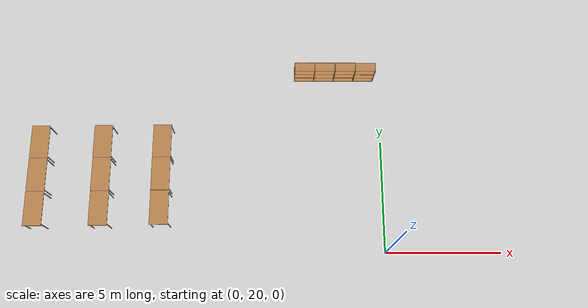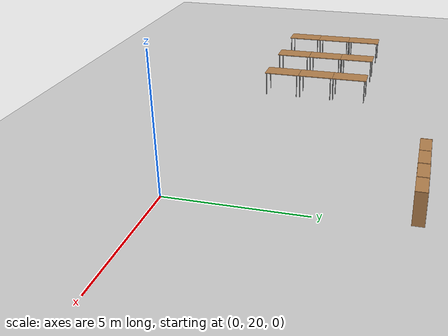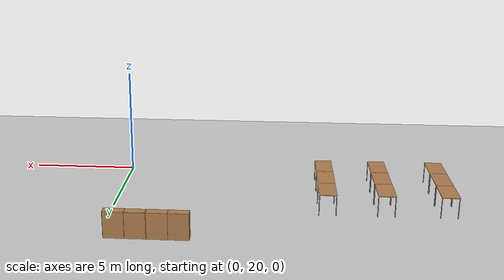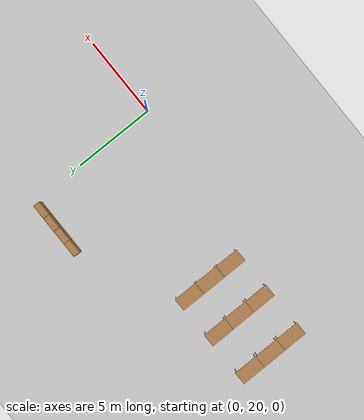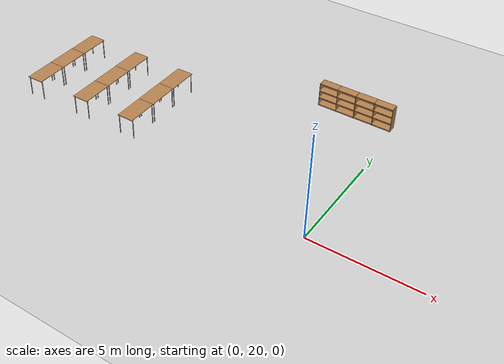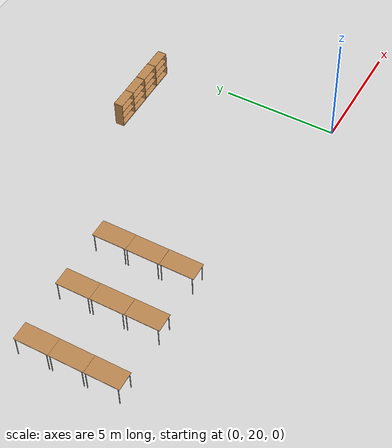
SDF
<sdf version="1.7">
 <world name="default">
  <include><uri>model://ground_plane</uri></include>
  <model name="table_clone_0_clone_0">
   <static>1</static>
   <link name="link">
    <collision name="surface">
     <pose>0 0 1 0 -0 0</pose>
     <geometry><box><size>1.5 0.8 0.03</size></box></geometry>
     <surface><friction><ode><mu>0.6</mu><mu2>0.6</mu2></ode></friction></surface>
    </collision>
    <visual name="visual1">
     <pose>0 0 1 0 -0 0</pose>
     <geometry><box><size>1.5 0.8 0.03</size></box></geometry>
     <material>
      <script><uri>file://media/materials/scripts/gazebo.material</uri><name>Gazebo/Wood</name></script>
     </material>
    </visual>
    <collision name="front_left_leg">
     <pose>0.68 0.38 0.5 0 -0 0</pose>
     <geometry><cylinder><radius>0.02</radius><length>1</length></cylinder></geometry>
    </collision>
    <visual name="front_left_leg">
     <pose>0.68 0.38 0.5 0 -0 0</pose>
     <geometry><cylinder><radius>0.02</radius><length>1</length></cylinder></geometry>
     <material>
      <script><uri>file://media/materials/scripts/gazebo.material</uri><name>Gazebo/Grey</name></script>
     </material>
    </visual>
    <collision name="front_right_leg">
     <pose>0.68 -0.38 0.5 0 -0 0</pose>
     <geometry><cylinder><radius>0.02</radius><length>1</length></cylinder></geometry>
    </collision>
    <visual name="front_right_leg">
     <pose>0.68 -0.38 0.5 0 -0 0</pose>
     <geometry><cylinder><radius>0.02</radius><length>1</length></cylinder></geometry>
     <material>
      <script><uri>file://media/materials/scripts/gazebo.material</uri><name>Gazebo/Grey</name></script>
     </material>
    </visual>
    <collision name="back_right_leg">
     <pose>-0.68 -0.38 0.5 0 -0 0</pose>
     <geometry><cylinder><radius>0.02</radius><length>1</length></cylinder></geometry>
    </collision>
    <visual name="back_right_leg">
     <pose>-0.68 -0.38 0.5 0 -0 0</pose>
     <geometry><cylinder><radius>0.02</radius><length>1</length></cylinder></geometry>
     <material>
      <script><uri>file://media/materials/scripts/gazebo.material</uri><name>Gazebo/Grey</name></script>
     </material>
    </visual>
    <collision name="back_left_leg">
     <pose>-0.68 0.38 0.5 0 -0 0</pose>
     <geometry><cylinder><radius>0.02</radius><length>1</length></cylinder></geometry>
    </collision>
    <visual name="back_left_leg">
     <pose>-0.68 0.38 0.5 0 -0 0</pose>
     <geometry><cylinder><radius>0.02</radius><length>1</length></cylinder></geometry>
     <material>
      <script><uri>file://media/materials/scripts/gazebo.material</uri><name>Gazebo/Grey</name></script>
     </material>
    </visual>
   </link>
   <pose>-15.0782 21.6879 0 0 -0 1.57868</pose>
  </model>
  <model name="table_clone_0_clone_0_clone">
   <static>1</static>
   <link name="link">
    <collision name="surface">
     <pose>0 0 1 0 -0 0</pose>
     <geometry><box><size>1.5 0.8 0.03</size></box></geometry>
     <surface><friction><ode><mu>0.6</mu><mu2>0.6</mu2></ode></friction></surface>
    </collision>
    <visual name="visual1">
     <pose>0 0 1 0 -0 0</pose>
     <geometry><box><size>1.5 0.8 0.03</size></box></geometry>
     <material>
      <script><uri>file://media/materials/scripts/gazebo.material</uri><name>Gazebo/Wood</name></script>
     </material>
    </visual>
    <collision name="front_left_leg">
     <pose>0.68 0.38 0.5 0 -0 0</pose>
     <geometry><cylinder><radius>0.02</radius><length>1</length></cylinder></geometry>
    </collision>
    <visual name="front_left_leg">
     <pose>0.68 0.38 0.5 0 -0 0</pose>
     <geometry><cylinder><radius>0.02</radius><length>1</length></cylinder></geometry>
     <material>
      <script><uri>file://media/materials/scripts/gazebo.material</uri><name>Gazebo/Grey</name></script>
     </material>
    </visual>
    <collision name="front_right_leg">
     <pose>0.68 -0.38 0.5 0 -0 0</pose>
     <geometry><cylinder><radius>0.02</radius><length>1</length></cylinder></geometry>
    </collision>
    <visual name="front_right_leg">
     <pose>0.68 -0.38 0.5 0 -0 0</pose>
     <geometry><cylinder><radius>0.02</radius><length>1</length></cylinder></geometry>
     <material>
      <script><uri>file://media/materials/scripts/gazebo.material</uri><name>Gazebo/Grey</name></script>
     </material>
    </visual>
    <collision name="back_right_leg">
     <pose>-0.68 -0.38 0.5 0 -0 0</pose>
     <geometry><cylinder><radius>0.02</radius><length>1</length></cylinder></geometry>
    </collision>
    <visual name="back_right_leg">
     <pose>-0.68 -0.38 0.5 0 -0 0</pose>
     <geometry><cylinder><radius>0.02</radius><length>1</length></cylinder></geometry>
     <material>
      <script><uri>file://media/materials/scripts/gazebo.material</uri><name>Gazebo/Grey</name></script>
     </material>
    </visual>
    <collision name="back_left_leg">
     <pose>-0.68 0.38 0.5 0 -0 0</pose>
     <geometry><cylinder><radius>0.02</radius><length>1</length></cylinder></geometry>
    </collision>
    <visual name="back_left_leg">
     <pose>-0.68 0.38 0.5 0 -0 0</pose>
     <geometry><cylinder><radius>0.02</radius><length>1</length></cylinder></geometry>
     <material>
      <script><uri>file://media/materials/scripts/gazebo.material</uri><name>Gazebo/Grey</name></script>
     </material>
    </visual>
   </link>
   <pose>-15.0927 23.1899 0 0 -0 1.57868</pose>
  </model>
  <model name="table_clone_0_clone_0_clone_0">
   <static>1</static>
   <link name="link">
    <collision name="surface">
     <pose>0 0 1 0 -0 0</pose>
     <geometry><box><size>1.5 0.8 0.03</size></box></geometry>
     <surface><friction><ode><mu>0.6</mu><mu2>0.6</mu2></ode></friction></surface>
    </collision>
    <visual name="visual1">
     <pose>0 0 1 0 -0 0</pose>
     <geometry><box><size>1.5 0.8 0.03</size></box></geometry>
     <material>
      <script><uri>file://media/materials/scripts/gazebo.material</uri><name>Gazebo/Wood</name></script>
     </material>
    </visual>
    <collision name="front_left_leg">
     <pose>0.68 0.38 0.5 0 -0 0</pose>
     <geometry><cylinder><radius>0.02</radius><length>1</length></cylinder></geometry>
    </collision>
    <visual name="front_left_leg">
     <pose>0.68 0.38 0.5 0 -0 0</pose>
     <geometry><cylinder><radius>0.02</radius><length>1</length></cylinder></geometry>
     <material>
      <script><uri>file://media/materials/scripts/gazebo.material</uri><name>Gazebo/Grey</name></script>
     </material>
    </visual>
    <collision name="front_right_leg">
     <pose>0.68 -0.38 0.5 0 -0 0</pose>
     <geometry><cylinder><radius>0.02</radius><length>1</length></cylinder></geometry>
    </collision>
    <visual name="front_right_leg">
     <pose>0.68 -0.38 0.5 0 -0 0</pose>
     <geometry><cylinder><radius>0.02</radius><length>1</length></cylinder></geometry>
     <material>
      <script><uri>file://media/materials/scripts/gazebo.material</uri><name>Gazebo/Grey</name></script>
     </material>
    </visual>
    <collision name="back_right_leg">
     <pose>-0.68 -0.38 0.5 0 -0 0</pose>
     <geometry><cylinder><radius>0.02</radius><length>1</length></cylinder></geometry>
    </collision>
    <visual name="back_right_leg">
     <pose>-0.68 -0.38 0.5 0 -0 0</pose>
     <geometry><cylinder><radius>0.02</radius><length>1</length></cylinder></geometry>
     <material>
      <script><uri>file://media/materials/scripts/gazebo.material</uri><name>Gazebo/Grey</name></script>
     </material>
    </visual>
    <collision name="back_left_leg">
     <pose>-0.68 0.38 0.5 0 -0 0</pose>
     <geometry><cylinder><radius>0.02</radius><length>1</length></cylinder></geometry>
    </collision>
    <visual name="back_left_leg">
     <pose>-0.68 0.38 0.5 0 -0 0</pose>
     <geometry><cylinder><radius>0.02</radius><length>1</length></cylinder></geometry>
     <material>
      <script><uri>file://media/materials/scripts/gazebo.material</uri><name>Gazebo/Grey</name></script>
     </material>
    </visual>
   </link>
   <pose>-15.1052 24.6869 0 0 -0 1.57868</pose>
  </model>
  <model name="table_clone_0_clone_0_clone_1">
   <static>1</static>
   <link name="link">
    <collision name="surface">
     <pose>0 0 1 0 -0 0</pose>
     <geometry><box><size>1.5 0.8 0.03</size></box></geometry>
     <surface><friction><ode><mu>0.6</mu><mu2>0.6</mu2></ode></friction></surface>
    </collision>
    <visual name="visual1">
     <pose>0 0 1 0 -0 0</pose>
     <geometry><box><size>1.5 0.8 0.03</size></box></geometry>
     <material>
      <script><uri>file://media/materials/scripts/gazebo.material</uri><name>Gazebo/Wood</name></script>
     </material>
    </visual>
    <collision name="front_left_leg">
     <pose>0.68 0.38 0.5 0 -0 0</pose>
     <geometry><cylinder><radius>0.02</radius><length>1</length></cylinder></geometry>
    </collision>
    <visual name="front_left_leg">
     <pose>0.68 0.38 0.5 0 -0 0</pose>
     <geometry><cylinder><radius>0.02</radius><length>1</length></cylinder></geometry>
     <material>
      <script><uri>file://media/materials/scripts/gazebo.material</uri><name>Gazebo/Grey</name></script>
     </material>
    </visual>
    <collision name="front_right_leg">
     <pose>0.68 -0.38 0.5 0 -0 0</pose>
     <geometry><cylinder><radius>0.02</radius><length>1</length></cylinder></geometry>
    </collision>
    <visual name="front_right_leg">
     <pose>0.68 -0.38 0.5 0 -0 0</pose>
     <geometry><cylinder><radius>0.02</radius><length>1</length></cylinder></geometry>
     <material>
      <script><uri>file://media/materials/scripts/gazebo.material</uri><name>Gazebo/Grey</name></script>
     </material>
    </visual>
    <collision name="back_right_leg">
     <pose>-0.68 -0.38 0.5 0 -0 0</pose>
     <geometry><cylinder><radius>0.02</radius><length>1</length></cylinder></geometry>
    </collision>
    <visual name="back_right_leg">
     <pose>-0.68 -0.38 0.5 0 -0 0</pose>
     <geometry><cylinder><radius>0.02</radius><length>1</length></cylinder></geometry>
     <material>
      <script><uri>file://media/materials/scripts/gazebo.material</uri><name>Gazebo/Grey</name></script>
     </material>
    </visual>
    <collision name="back_left_leg">
     <pose>-0.68 0.38 0.5 0 -0 0</pose>
     <geometry><cylinder><radius>0.02</radius><length>1</length></cylinder></geometry>
    </collision>
    <visual name="back_left_leg">
     <pose>-0.68 0.38 0.5 0 -0 0</pose>
     <geometry><cylinder><radius>0.02</radius><length>1</length></cylinder></geometry>
     <material>
      <script><uri>file://media/materials/scripts/gazebo.material</uri><name>Gazebo/Grey</name></script>
     </material>
    </visual>
   </link>
   <pose>-12.3028 21.7171 0 0 -0 1.57868</pose>
  </model>
  <model name="table_clone_0_clone_0_clone_2">
   <static>1</static>
   <link name="link">
    <collision name="surface">
     <pose>0 0 1 0 -0 0</pose>
     <geometry><box><size>1.5 0.8 0.03</size></box></geometry>
     <surface><friction><ode><mu>0.6</mu><mu2>0.6</mu2></ode></friction></surface>
    </collision>
    <visual name="visual1">
     <pose>0 0 1 0 -0 0</pose>
     <geometry><box><size>1.5 0.8 0.03</size></box></geometry>
     <material>
      <script><uri>file://media/materials/scripts/gazebo.material</uri><name>Gazebo/Wood</name></script>
     </material>
    </visual>
    <collision name="front_left_leg">
     <pose>0.68 0.38 0.5 0 -0 0</pose>
     <geometry><cylinder><radius>0.02</radius><length>1</length></cylinder></geometry>
    </collision>
    <visual name="front_left_leg">
     <pose>0.68 0.38 0.5 0 -0 0</pose>
     <geometry><cylinder><radius>0.02</radius><length>1</length></cylinder></geometry>
     <material>
      <script><uri>file://media/materials/scripts/gazebo.material</uri><name>Gazebo/Grey</name></script>
     </material>
    </visual>
    <collision name="front_right_leg">
     <pose>0.68 -0.38 0.5 0 -0 0</pose>
     <geometry><cylinder><radius>0.02</radius><length>1</length></cylinder></geometry>
    </collision>
    <visual name="front_right_leg">
     <pose>0.68 -0.38 0.5 0 -0 0</pose>
     <geometry><cylinder><radius>0.02</radius><length>1</length></cylinder></geometry>
     <material>
      <script><uri>file://media/materials/scripts/gazebo.material</uri><name>Gazebo/Grey</name></script>
     </material>
    </visual>
    <collision name="back_right_leg">
     <pose>-0.68 -0.38 0.5 0 -0 0</pose>
     <geometry><cylinder><radius>0.02</radius><length>1</length></cylinder></geometry>
    </collision>
    <visual name="back_right_leg">
     <pose>-0.68 -0.38 0.5 0 -0 0</pose>
     <geometry><cylinder><radius>0.02</radius><length>1</length></cylinder></geometry>
     <material>
      <script><uri>file://media/materials/scripts/gazebo.material</uri><name>Gazebo/Grey</name></script>
     </material>
    </visual>
    <collision name="back_left_leg">
     <pose>-0.68 0.38 0.5 0 -0 0</pose>
     <geometry><cylinder><radius>0.02</radius><length>1</length></cylinder></geometry>
    </collision>
    <visual name="back_left_leg">
     <pose>-0.68 0.38 0.5 0 -0 0</pose>
     <geometry><cylinder><radius>0.02</radius><length>1</length></cylinder></geometry>
     <material>
      <script><uri>file://media/materials/scripts/gazebo.material</uri><name>Gazebo/Grey</name></script>
     </material>
    </visual>
   </link>
   <pose>-12.3227 23.2209 0 0 -0 1.57868</pose>
  </model>
  <model name="table_clone_0_clone_0_clone_3">
   <static>1</static>
   <link name="link">
    <collision name="surface">
     <pose>0 0 1 0 -0 0</pose>
     <geometry><box><size>1.5 0.8 0.03</size></box></geometry>
     <surface><friction><ode><mu>0.6</mu><mu2>0.6</mu2></ode></friction></surface>
    </collision>
    <visual name="visual1">
     <pose>0 0 1 0 -0 0</pose>
     <geometry><box><size>1.5 0.8 0.03</size></box></geometry>
     <material>
      <script><uri>file://media/materials/scripts/gazebo.material</uri><name>Gazebo/Wood</name></script>
     </material>
    </visual>
    <collision name="front_left_leg">
     <pose>0.68 0.38 0.5 0 -0 0</pose>
     <geometry><cylinder><radius>0.02</radius><length>1</length></cylinder></geometry>
    </collision>
    <visual name="front_left_leg">
     <pose>0.68 0.38 0.5 0 -0 0</pose>
     <geometry><cylinder><radius>0.02</radius><length>1</length></cylinder></geometry>
     <material>
      <script><uri>file://media/materials/scripts/gazebo.material</uri><name>Gazebo/Grey</name></script>
     </material>
    </visual>
    <collision name="front_right_leg">
     <pose>0.68 -0.38 0.5 0 -0 0</pose>
     <geometry><cylinder><radius>0.02</radius><length>1</length></cylinder></geometry>
    </collision>
    <visual name="front_right_leg">
     <pose>0.68 -0.38 0.5 0 -0 0</pose>
     <geometry><cylinder><radius>0.02</radius><length>1</length></cylinder></geometry>
     <material>
      <script><uri>file://media/materials/scripts/gazebo.material</uri><name>Gazebo/Grey</name></script>
     </material>
    </visual>
    <collision name="back_right_leg">
     <pose>-0.68 -0.38 0.5 0 -0 0</pose>
     <geometry><cylinder><radius>0.02</radius><length>1</length></cylinder></geometry>
    </collision>
    <visual name="back_right_leg">
     <pose>-0.68 -0.38 0.5 0 -0 0</pose>
     <geometry><cylinder><radius>0.02</radius><length>1</length></cylinder></geometry>
     <material>
      <script><uri>file://media/materials/scripts/gazebo.material</uri><name>Gazebo/Grey</name></script>
     </material>
    </visual>
    <collision name="back_left_leg">
     <pose>-0.68 0.38 0.5 0 -0 0</pose>
     <geometry><cylinder><radius>0.02</radius><length>1</length></cylinder></geometry>
    </collision>
    <visual name="back_left_leg">
     <pose>-0.68 0.38 0.5 0 -0 0</pose>
     <geometry><cylinder><radius>0.02</radius><length>1</length></cylinder></geometry>
     <material>
      <script><uri>file://media/materials/scripts/gazebo.material</uri><name>Gazebo/Grey</name></script>
     </material>
    </visual>
   </link>
   <pose>-12.3425 24.7177 0 0 -0 1.57868</pose>
  </model>
  <model name="table_clone_0_clone_0_clone_4">
   <static>1</static>
   <link name="link">
    <collision name="surface">
     <pose>0 0 1 0 -0 0</pose>
     <geometry><box><size>1.5 0.8 0.03</size></box></geometry>
     <surface><friction><ode><mu>0.6</mu><mu2>0.6</mu2></ode></friction></surface>
    </collision>
    <visual name="visual1">
     <pose>0 0 1 0 -0 0</pose>
     <geometry><box><size>1.5 0.8 0.03</size></box></geometry>
     <material>
      <script><uri>file://media/materials/scripts/gazebo.material</uri><name>Gazebo/Wood</name></script>
     </material>
    </visual>
    <collision name="front_left_leg">
     <pose>0.68 0.38 0.5 0 -0 0</pose>
     <geometry><cylinder><radius>0.02</radius><length>1</length></cylinder></geometry>
    </collision>
    <visual name="front_left_leg">
     <pose>0.68 0.38 0.5 0 -0 0</pose>
     <geometry><cylinder><radius>0.02</radius><length>1</length></cylinder></geometry>
     <material>
      <script><uri>file://media/materials/scripts/gazebo.material</uri><name>Gazebo/Grey</name></script>
     </material>
    </visual>
    <collision name="front_right_leg">
     <pose>0.68 -0.38 0.5 0 -0 0</pose>
     <geometry><cylinder><radius>0.02</radius><length>1</length></cylinder></geometry>
    </collision>
    <visual name="front_right_leg">
     <pose>0.68 -0.38 0.5 0 -0 0</pose>
     <geometry><cylinder><radius>0.02</radius><length>1</length></cylinder></geometry>
     <material>
      <script><uri>file://media/materials/scripts/gazebo.material</uri><name>Gazebo/Grey</name></script>
     </material>
    </visual>
    <collision name="back_right_leg">
     <pose>-0.68 -0.38 0.5 0 -0 0</pose>
     <geometry><cylinder><radius>0.02</radius><length>1</length></cylinder></geometry>
    </collision>
    <visual name="back_right_leg">
     <pose>-0.68 -0.38 0.5 0 -0 0</pose>
     <geometry><cylinder><radius>0.02</radius><length>1</length></cylinder></geometry>
     <material>
      <script><uri>file://media/materials/scripts/gazebo.material</uri><name>Gazebo/Grey</name></script>
     </material>
    </visual>
    <collision name="back_left_leg">
     <pose>-0.68 0.38 0.5 0 -0 0</pose>
     <geometry><cylinder><radius>0.02</radius><length>1</length></cylinder></geometry>
    </collision>
    <visual name="back_left_leg">
     <pose>-0.68 0.38 0.5 0 -0 0</pose>
     <geometry><cylinder><radius>0.02</radius><length>1</length></cylinder></geometry>
     <material>
      <script><uri>file://media/materials/scripts/gazebo.material</uri><name>Gazebo/Grey</name></script>
     </material>
    </visual>
   </link>
   <pose>-9.72214 21.765 0 0 -0 1.57868</pose>
  </model>
  <model name="table_clone_0_clone_0_clone_5">
   <static>1</static>
   <link name="link">
    <collision name="surface">
     <pose>0 0 1 0 -0 0</pose>
     <geometry><box><size>1.5 0.8 0.03</size></box></geometry>
     <surface><friction><ode><mu>0.6</mu><mu2>0.6</mu2></ode></friction></surface>
    </collision>
    <visual name="visual1">
     <pose>0 0 1 0 -0 0</pose>
     <geometry><box><size>1.5 0.8 0.03</size></box></geometry>
     <material>
      <script><uri>file://media/materials/scripts/gazebo.material</uri><name>Gazebo/Wood</name></script>
     </material>
    </visual>
    <collision name="front_left_leg">
     <pose>0.68 0.38 0.5 0 -0 0</pose>
     <geometry><cylinder><radius>0.02</radius><length>1</length></cylinder></geometry>
    </collision>
    <visual name="front_left_leg">
     <pose>0.68 0.38 0.5 0 -0 0</pose>
     <geometry><cylinder><radius>0.02</radius><length>1</length></cylinder></geometry>
     <material>
      <script><uri>file://media/materials/scripts/gazebo.material</uri><name>Gazebo/Grey</name></script>
     </material>
    </visual>
    <collision name="front_right_leg">
     <pose>0.68 -0.38 0.5 0 -0 0</pose>
     <geometry><cylinder><radius>0.02</radius><length>1</length></cylinder></geometry>
    </collision>
    <visual name="front_right_leg">
     <pose>0.68 -0.38 0.5 0 -0 0</pose>
     <geometry><cylinder><radius>0.02</radius><length>1</length></cylinder></geometry>
     <material>
      <script><uri>file://media/materials/scripts/gazebo.material</uri><name>Gazebo/Grey</name></script>
     </material>
    </visual>
    <collision name="back_right_leg">
     <pose>-0.68 -0.38 0.5 0 -0 0</pose>
     <geometry><cylinder><radius>0.02</radius><length>1</length></cylinder></geometry>
    </collision>
    <visual name="back_right_leg">
     <pose>-0.68 -0.38 0.5 0 -0 0</pose>
     <geometry><cylinder><radius>0.02</radius><length>1</length></cylinder></geometry>
     <material>
      <script><uri>file://media/materials/scripts/gazebo.material</uri><name>Gazebo/Grey</name></script>
     </material>
    </visual>
    <collision name="back_left_leg">
     <pose>-0.68 0.38 0.5 0 -0 0</pose>
     <geometry><cylinder><radius>0.02</radius><length>1</length></cylinder></geometry>
    </collision>
    <visual name="back_left_leg">
     <pose>-0.68 0.38 0.5 0 -0 0</pose>
     <geometry><cylinder><radius>0.02</radius><length>1</length></cylinder></geometry>
     <material>
      <script><uri>file://media/materials/scripts/gazebo.material</uri><name>Gazebo/Grey</name></script>
     </material>
    </visual>
   </link>
   <pose>-9.7373 23.2688 0 0 -0 1.57868</pose>
  </model>
  <model name="table_clone_0_clone_0_clone_6">
   <static>1</static>
   <link name="link">
    <collision name="surface">
     <pose>0 0 1 0 -0 0</pose>
     <geometry><box><size>1.5 0.8 0.03</size></box></geometry>
     <surface><friction><ode><mu>0.6</mu><mu2>0.6</mu2></ode></friction></surface>
    </collision>
    <visual name="visual1">
     <pose>0 0 1 0 -0 0</pose>
     <geometry><box><size>1.5 0.8 0.03</size></box></geometry>
     <material>
      <script><uri>file://media/materials/scripts/gazebo.material</uri><name>Gazebo/Wood</name></script>
     </material>
    </visual>
    <collision name="front_left_leg">
     <pose>0.68 0.38 0.5 0 -0 0</pose>
     <geometry><cylinder><radius>0.02</radius><length>1</length></cylinder></geometry>
    </collision>
    <visual name="front_left_leg">
     <pose>0.68 0.38 0.5 0 -0 0</pose>
     <geometry><cylinder><radius>0.02</radius><length>1</length></cylinder></geometry>
     <material>
      <script><uri>file://media/materials/scripts/gazebo.material</uri><name>Gazebo/Grey</name></script>
     </material>
    </visual>
    <collision name="front_right_leg">
     <pose>0.68 -0.38 0.5 0 -0 0</pose>
     <geometry><cylinder><radius>0.02</radius><length>1</length></cylinder></geometry>
    </collision>
    <visual name="front_right_leg">
     <pose>0.68 -0.38 0.5 0 -0 0</pose>
     <geometry><cylinder><radius>0.02</radius><length>1</length></cylinder></geometry>
     <material>
      <script><uri>file://media/materials/scripts/gazebo.material</uri><name>Gazebo/Grey</name></script>
     </material>
    </visual>
    <collision name="back_right_leg">
     <pose>-0.68 -0.38 0.5 0 -0 0</pose>
     <geometry><cylinder><radius>0.02</radius><length>1</length></cylinder></geometry>
    </collision>
    <visual name="back_right_leg">
     <pose>-0.68 -0.38 0.5 0 -0 0</pose>
     <geometry><cylinder><radius>0.02</radius><length>1</length></cylinder></geometry>
     <material>
      <script><uri>file://media/materials/scripts/gazebo.material</uri><name>Gazebo/Grey</name></script>
     </material>
    </visual>
    <collision name="back_left_leg">
     <pose>-0.68 0.38 0.5 0 -0 0</pose>
     <geometry><cylinder><radius>0.02</radius><length>1</length></cylinder></geometry>
    </collision>
    <visual name="back_left_leg">
     <pose>-0.68 0.38 0.5 0 -0 0</pose>
     <geometry><cylinder><radius>0.02</radius><length>1</length></cylinder></geometry>
     <material>
      <script><uri>file://media/materials/scripts/gazebo.material</uri><name>Gazebo/Grey</name></script>
     </material>
    </visual>
   </link>
   <pose>-9.74354 24.7481 0 0 -0 1.57868</pose>
  </model>
  <model name="bookshelf">
   <static>1</static>
   <link name="link">
    <inertial><mass>1</mass></inertial>
    <collision name="back">
     <pose>0 0.005 0.6 0 -0 0</pose>
     <geometry><box><size>0.9 0.01 1.2</size></box></geometry>
    </collision>
    <visual name="visual1">
     <pose>0 0.005 0.6 0 -0 0</pose>
     <geometry><box><size>0.9 0.01 1.2</size></box></geometry>
     <material>
      <script><uri>file://media/materials/scripts/gazebo.material</uri><name>Gazebo/Wood</name></script>
     </material>
    </visual>
    <collision name="left_side">
     <pose>0.45 -0.195 0.6 0 -0 0</pose>
     <geometry><box><size>0.02 0.4 1.2</size></box></geometry>
    </collision>
    <visual name="visual2">
     <pose>0.45 -0.195 0.6 0 -0 0</pose>
     <geometry><box><size>0.02 0.4 1.2</size></box></geometry>
     <material>
      <script><uri>file://media/materials/scripts/gazebo.material</uri><name>Gazebo/Wood</name></script>
     </material>
    </visual>
    <collision name="right_side">
     <pose>-0.45 -0.195 0.6 0 -0 0</pose>
     <geometry><box><size>0.02 0.4 1.2</size></box></geometry>
    </collision>
    <visual name="visual3">
     <pose>-0.45 -0.195 0.6 0 -0 0</pose>
     <geometry><box><size>0.02 0.4 1.2</size></box></geometry>
     <material>
      <script><uri>file://media/materials/scripts/gazebo.material</uri><name>Gazebo/Wood</name></script>
     </material>
    </visual>
    <collision name="bottom">
     <pose>0 -0.195 0.03 0 -0 0</pose>
     <geometry><box><size>0.88 0.4 0.06</size></box></geometry>
    </collision>
    <visual name="visual4">
     <pose>0 -0.195 0.03 0 -0 0</pose>
     <geometry><box><size>0.88 0.4 0.06</size></box></geometry>
     <material>
      <script><uri>file://media/materials/scripts/gazebo.material</uri><name>Gazebo/Wood</name></script>
     </material>
    </visual>
    <collision name="top">
     <pose>0 -0.195 1.19 0 -0 0</pose>
     <geometry><box><size>0.88 0.4 0.02</size></box></geometry>
    </collision>
    <visual name="visual5">
     <pose>0 -0.195 1.19 0 -0 0</pose>
     <geometry><box><size>0.88 0.4 0.02</size></box></geometry>
     <material>
      <script><uri>file://media/materials/scripts/gazebo.material</uri><name>Gazebo/Wood</name></script>
     </material>
    </visual>
    <collision name="low_shelf">
     <pose>0 -0.195 0.43 0 -0 0</pose>
     <geometry><box><size>0.88 0.4 0.02</size></box></geometry>
    </collision>
    <visual name="visual6">
     <pose>0 -0.195 0.43 0 -0 0</pose>
     <geometry><box><size>0.88 0.4 0.02</size></box></geometry>
     <material>
      <script><uri>file://media/materials/scripts/gazebo.material</uri><name>Gazebo/Wood</name></script>
     </material>
    </visual>
    <collision name="high_shelf">
     <pose>0 -0.195 0.8 0 -0 0</pose>
     <geometry><box><size>0.88 0.4 0.02</size></box></geometry>
    </collision>
    <visual name="visual7">
     <pose>0 -0.195 0.8 0 -0 0</pose>
     <geometry><box><size>0.88 0.4 0.02</size></box></geometry>
     <material>
      <script><uri>file://media/materials/scripts/gazebo.material</uri><name>Gazebo/Wood</name></script>
     </material>
    </visual>
   </link>
   <pose>-3.44635 28.4005 0 0 -0 0</pose>
  </model>
  <model name="bookshelf_clone">
   <static>1</static>
   <link name="link">
    <inertial><mass>1</mass></inertial>
    <collision name="back">
     <pose>0 0.005 0.6 0 -0 0</pose>
     <geometry><box><size>0.9 0.01 1.2</size></box></geometry>
    </collision>
    <visual name="visual1">
     <pose>0 0.005 0.6 0 -0 0</pose>
     <geometry><box><size>0.9 0.01 1.2</size></box></geometry>
     <material>
      <script><uri>file://media/materials/scripts/gazebo.material</uri><name>Gazebo/Wood</name></script>
     </material>
    </visual>
    <collision name="left_side">
     <pose>0.45 -0.195 0.6 0 -0 0</pose>
     <geometry><box><size>0.02 0.4 1.2</size></box></geometry>
    </collision>
    <visual name="visual2">
     <pose>0.45 -0.195 0.6 0 -0 0</pose>
     <geometry><box><size>0.02 0.4 1.2</size></box></geometry>
     <material>
      <script><uri>file://media/materials/scripts/gazebo.material</uri><name>Gazebo/Wood</name></script>
     </material>
    </visual>
    <collision name="right_side">
     <pose>-0.45 -0.195 0.6 0 -0 0</pose>
     <geometry><box><size>0.02 0.4 1.2</size></box></geometry>
    </collision>
    <visual name="visual3">
     <pose>-0.45 -0.195 0.6 0 -0 0</pose>
     <geometry><box><size>0.02 0.4 1.2</size></box></geometry>
     <material>
      <script><uri>file://media/materials/scripts/gazebo.material</uri><name>Gazebo/Wood</name></script>
     </material>
    </visual>
    <collision name="bottom">
     <pose>0 -0.195 0.03 0 -0 0</pose>
     <geometry><box><size>0.88 0.4 0.06</size></box></geometry>
    </collision>
    <visual name="visual4">
     <pose>0 -0.195 0.03 0 -0 0</pose>
     <geometry><box><size>0.88 0.4 0.06</size></box></geometry>
     <material>
      <script><uri>file://media/materials/scripts/gazebo.material</uri><name>Gazebo/Wood</name></script>
     </material>
    </visual>
    <collision name="top">
     <pose>0 -0.195 1.19 0 -0 0</pose>
     <geometry><box><size>0.88 0.4 0.02</size></box></geometry>
    </collision>
    <visual name="visual5">
     <pose>0 -0.195 1.19 0 -0 0</pose>
     <geometry><box><size>0.88 0.4 0.02</size></box></geometry>
     <material>
      <script><uri>file://media/materials/scripts/gazebo.material</uri><name>Gazebo/Wood</name></script>
     </material>
    </visual>
    <collision name="low_shelf">
     <pose>0 -0.195 0.43 0 -0 0</pose>
     <geometry><box><size>0.88 0.4 0.02</size></box></geometry>
    </collision>
    <visual name="visual6">
     <pose>0 -0.195 0.43 0 -0 0</pose>
     <geometry><box><size>0.88 0.4 0.02</size></box></geometry>
     <material>
      <script><uri>file://media/materials/scripts/gazebo.material</uri><name>Gazebo/Wood</name></script>
     </material>
    </visual>
    <collision name="high_shelf">
     <pose>0 -0.195 0.8 0 -0 0</pose>
     <geometry><box><size>0.88 0.4 0.02</size></box></geometry>
    </collision>
    <visual name="visual7">
     <pose>0 -0.195 0.8 0 -0 0</pose>
     <geometry><box><size>0.88 0.4 0.02</size></box></geometry>
     <material>
      <script><uri>file://media/materials/scripts/gazebo.material</uri><name>Gazebo/Wood</name></script>
     </material>
    </visual>
   </link>
   <pose>-2.54304 28.3999 0 0 -0 0</pose>
  </model>
  <model name="bookshelf_clone_0">
   <static>1</static>
   <link name="link">
    <inertial><mass>1</mass></inertial>
    <collision name="back">
     <pose>0 0.005 0.6 0 -0 0</pose>
     <geometry><box><size>0.9 0.01 1.2</size></box></geometry>
    </collision>
    <visual name="visual1">
     <pose>0 0.005 0.6 0 -0 0</pose>
     <geometry><box><size>0.9 0.01 1.2</size></box></geometry>
     <material>
      <script><uri>file://media/materials/scripts/gazebo.material</uri><name>Gazebo/Wood</name></script>
     </material>
    </visual>
    <collision name="left_side">
     <pose>0.45 -0.195 0.6 0 -0 0</pose>
     <geometry><box><size>0.02 0.4 1.2</size></box></geometry>
    </collision>
    <visual name="visual2">
     <pose>0.45 -0.195 0.6 0 -0 0</pose>
     <geometry><box><size>0.02 0.4 1.2</size></box></geometry>
     <material>
      <script><uri>file://media/materials/scripts/gazebo.material</uri><name>Gazebo/Wood</name></script>
     </material>
    </visual>
    <collision name="right_side">
     <pose>-0.45 -0.195 0.6 0 -0 0</pose>
     <geometry><box><size>0.02 0.4 1.2</size></box></geometry>
    </collision>
    <visual name="visual3">
     <pose>-0.45 -0.195 0.6 0 -0 0</pose>
     <geometry><box><size>0.02 0.4 1.2</size></box></geometry>
     <material>
      <script><uri>file://media/materials/scripts/gazebo.material</uri><name>Gazebo/Wood</name></script>
     </material>
    </visual>
    <collision name="bottom">
     <pose>0 -0.195 0.03 0 -0 0</pose>
     <geometry><box><size>0.88 0.4 0.06</size></box></geometry>
    </collision>
    <visual name="visual4">
     <pose>0 -0.195 0.03 0 -0 0</pose>
     <geometry><box><size>0.88 0.4 0.06</size></box></geometry>
     <material>
      <script><uri>file://media/materials/scripts/gazebo.material</uri><name>Gazebo/Wood</name></script>
     </material>
    </visual>
    <collision name="top">
     <pose>0 -0.195 1.19 0 -0 0</pose>
     <geometry><box><size>0.88 0.4 0.02</size></box></geometry>
    </collision>
    <visual name="visual5">
     <pose>0 -0.195 1.19 0 -0 0</pose>
     <geometry><box><size>0.88 0.4 0.02</size></box></geometry>
     <material>
      <script><uri>file://media/materials/scripts/gazebo.material</uri><name>Gazebo/Wood</name></script>
     </material>
    </visual>
    <collision name="low_shelf">
     <pose>0 -0.195 0.43 0 -0 0</pose>
     <geometry><box><size>0.88 0.4 0.02</size></box></geometry>
    </collision>
    <visual name="visual6">
     <pose>0 -0.195 0.43 0 -0 0</pose>
     <geometry><box><size>0.88 0.4 0.02</size></box></geometry>
     <material>
      <script><uri>file://media/materials/scripts/gazebo.material</uri><name>Gazebo/Wood</name></script>
     </material>
    </visual>
    <collision name="high_shelf">
     <pose>0 -0.195 0.8 0 -0 0</pose>
     <geometry><box><size>0.88 0.4 0.02</size></box></geometry>
    </collision>
    <visual name="visual7">
     <pose>0 -0.195 0.8 0 -0 0</pose>
     <geometry><box><size>0.88 0.4 0.02</size></box></geometry>
     <material>
      <script><uri>file://media/materials/scripts/gazebo.material</uri><name>Gazebo/Wood</name></script>
     </material>
    </visual>
   </link>
   <pose>-1.62208 28.4053 0 0 -0 0</pose>
  </model>
  <model name="bookshelf_clone_1">
   <static>1</static>
   <link name="link">
    <inertial><mass>1</mass></inertial>
    <collision name="back">
     <pose>0 0.005 0.6 0 -0 0</pose>
     <geometry><box><size>0.9 0.01 1.2</size></box></geometry>
    </collision>
    <visual name="visual1">
     <pose>0 0.005 0.6 0 -0 0</pose>
     <geometry><box><size>0.9 0.01 1.2</size></box></geometry>
     <material>
      <script><uri>file://media/materials/scripts/gazebo.material</uri><name>Gazebo/Wood</name></script>
     </material>
    </visual>
    <collision name="left_side">
     <pose>0.45 -0.195 0.6 0 -0 0</pose>
     <geometry><box><size>0.02 0.4 1.2</size></box></geometry>
    </collision>
    <visual name="visual2">
     <pose>0.45 -0.195 0.6 0 -0 0</pose>
     <geometry><box><size>0.02 0.4 1.2</size></box></geometry>
     <material>
      <script><uri>file://media/materials/scripts/gazebo.material</uri><name>Gazebo/Wood</name></script>
     </material>
    </visual>
    <collision name="right_side">
     <pose>-0.45 -0.195 0.6 0 -0 0</pose>
     <geometry><box><size>0.02 0.4 1.2</size></box></geometry>
    </collision>
    <visual name="visual3">
     <pose>-0.45 -0.195 0.6 0 -0 0</pose>
     <geometry><box><size>0.02 0.4 1.2</size></box></geometry>
     <material>
      <script><uri>file://media/materials/scripts/gazebo.material</uri><name>Gazebo/Wood</name></script>
     </material>
    </visual>
    <collision name="bottom">
     <pose>0 -0.195 0.03 0 -0 0</pose>
     <geometry><box><size>0.88 0.4 0.06</size></box></geometry>
    </collision>
    <visual name="visual4">
     <pose>0 -0.195 0.03 0 -0 0</pose>
     <geometry><box><size>0.88 0.4 0.06</size></box></geometry>
     <material>
      <script><uri>file://media/materials/scripts/gazebo.material</uri><name>Gazebo/Wood</name></script>
     </material>
    </visual>
    <collision name="top">
     <pose>0 -0.195 1.19 0 -0 0</pose>
     <geometry><box><size>0.88 0.4 0.02</size></box></geometry>
    </collision>
    <visual name="visual5">
     <pose>0 -0.195 1.19 0 -0 0</pose>
     <geometry><box><size>0.88 0.4 0.02</size></box></geometry>
     <material>
      <script><uri>file://media/materials/scripts/gazebo.material</uri><name>Gazebo/Wood</name></script>
     </material>
    </visual>
    <collision name="low_shelf">
     <pose>0 -0.195 0.43 0 -0 0</pose>
     <geometry><box><size>0.88 0.4 0.02</size></box></geometry>
    </collision>
    <visual name="visual6">
     <pose>0 -0.195 0.43 0 -0 0</pose>
     <geometry><box><size>0.88 0.4 0.02</size></box></geometry>
     <material>
      <script><uri>file://media/materials/scripts/gazebo.material</uri><name>Gazebo/Wood</name></script>
     </material>
    </visual>
    <collision name="high_shelf">
     <pose>0 -0.195 0.8 0 -0 0</pose>
     <geometry><box><size>0.88 0.4 0.02</size></box></geometry>
    </collision>
    <visual name="visual7">
     <pose>0 -0.195 0.8 0 -0 0</pose>
     <geometry><box><size>0.88 0.4 0.02</size></box></geometry>
     <material>
      <script><uri>file://media/materials/scripts/gazebo.material</uri><name>Gazebo/Wood</name></script>
     </material>
    </visual>
   </link>
   <pose>-0.710521 28.3999 0 0 -0 0</pose>
  </model>
 </world>
</sdf>
